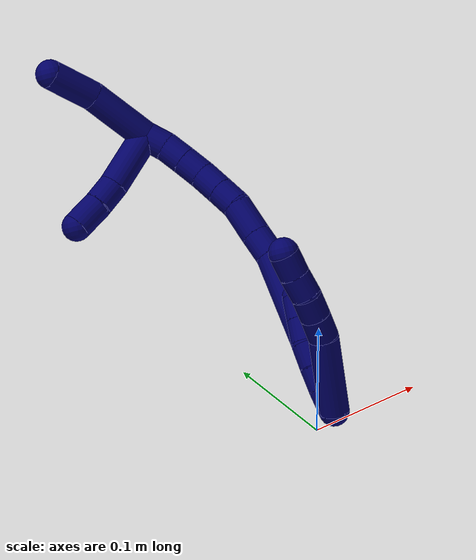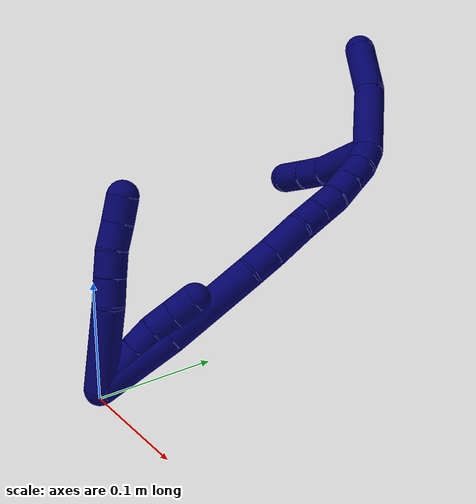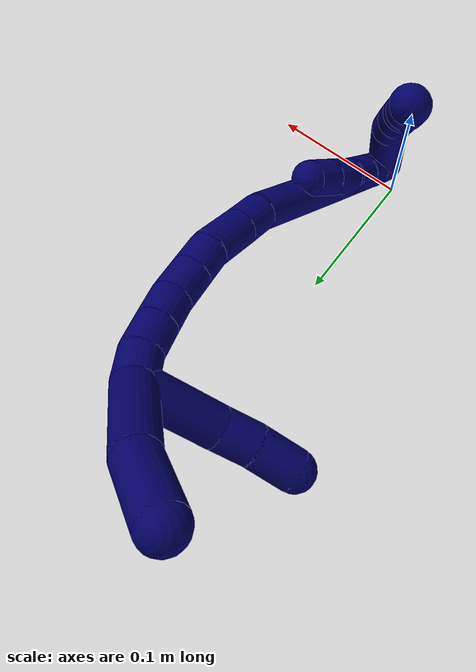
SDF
<sdf version="1.7">
 <world name="default">
  <model name="photoneo_s_sensor">
   <static>1</static>
   <pose>0 0 2 1.57079 1.57079 3.14159</pose>
   <link name="link">
    <inertial><mass>0.1</mass></inertial>
    <sensor name="sensor" type="depth">
     <update_rate>30</update_rate>
     <camera>
      <horizontal_fov>1.22</horizontal_fov>
      <image><width>1920</width><height>1200</height><format>B8G8R8</format></image>
      <clip><near>0.1</near><far>4</far></clip>
      <depth_camera><output>points</output></depth_camera>
     </camera>
     <plugin name="camera_plugin" filename="libgazebo_ros_depth_camera.so">
      <baseline>0.2</baseline>
      <alwaysOn>1</alwaysOn>
      <updateRate>0.0</updateRate>
      <cameraName>camera_ir</cameraName>
      <imageTopicName>/camera/color/image_raw</imageTopicName>
      <cameraInfoTopicName>/camera/color/camera_info</cameraInfoTopicName>
      <depthImageTopicName>/camera/depth/image_raw</depthImageTopicName>
      <depthImageCameraInfoTopicName>/camera/depth/camera_info</depthImageCameraInfoTopicName>
      <pointCloudTopicName>/camera/depth/points</pointCloudTopicName>
      <frameName>fr_optical</frameName>
      <pointCloudCutoff>0.1</pointCloudCutoff>
      <pointCloudCutoffMax>2.0</pointCloudCutoffMax>
      <distortionK1>0</distortionK1>
      <distortionK2>0</distortionK2>
      <distortionK3>0</distortionK3>
      <distortionT1>0</distortionT1>
      <distortionT2>0</distortionT2>
      <CxPrime>0</CxPrime>
      <Cx>0</Cx>
      <Cy>0</Cy>
      <focalLength>0</focalLength>
      <hackBaseline>0</hackBaseline>
     </plugin>
    </sensor>
   </link>
  </model>
  <model name="bin">
   <static>1</static>
   <link name="bottom">
    <collision name="collision-bottom">
     <pose>0 0 -0.01 0 -0 0</pose>
     <geometry><box><size>0.8 0.6 0.02</size></box></geometry>
     <surface>
      <friction><ode><mu>100</mu><mu2>100</mu2></ode></friction>
      <contact><collide_bitmask>65535</collide_bitmask></contact>
     </surface>
    </collision>
   </link>
   <link name="west_wall">
    <collision name="collision-west_wall">
     <pose>-0.41 0 0.1 0 -0 0</pose>
     <geometry><box><size>0.02 0.6 0.2</size></box></geometry>
     <surface>
      <friction><ode><mu>100</mu><mu2>100</mu2></ode></friction>
      <contact><collide_bitmask>65535</collide_bitmask></contact>
     </surface>
    </collision>
   </link>
   <link name="east_wall">
    <collision name="collision-east_wall">
     <pose>0.41 0 0.1 0 -0 0</pose>
     <geometry><box><size>0.02 0.6 0.2</size></box></geometry>
     <surface>
      <friction><ode><mu>100</mu><mu2>100</mu2></ode></friction>
      <contact><collide_bitmask>65535</collide_bitmask></contact>
     </surface>
    </collision>
   </link>
   <link name="south_wall">
    <collision name="collision-south_wall">
     <pose>0 -0.31 0.1 0 -0 0</pose>
     <geometry><box><size>0.8 0.02 0.2</size></box></geometry>
     <surface>
      <friction><ode><mu>100</mu><mu2>100</mu2></ode></friction>
      <contact><collide_bitmask>65535</collide_bitmask></contact>
     </surface>
    </collision>
   </link>
   <link name="north_wall">
    <collision name="collision-north_wall">
     <pose>0 0.31 0.1 0 -0 0</pose>
     <geometry><box><size>0.8 0.02 0.2</size></box></geometry>
     <surface>
      <friction><ode><mu>100</mu><mu2>100</mu2></ode></friction>
      <contact><collide_bitmask>65535</collide_bitmask></contact>
     </surface>
    </collision>
   </link>
  </model>
  <model name="7">
   <static>0</static>
   <link name="7">
    <collision name="collision-cylinder-e_1_2_8">
     <pose>-0.014497 -0.006418 0.030161 0.209649 -0.439474 -0.046987</pose>
     <geometry><cylinder><radius>0.0125</radius><length>0.068149</length></cylinder></geometry>
     <surface>
      <friction><ode><mu>1.16</mu><mu2>1.16</mu2><slip1>0</slip1><slip2>0</slip2></ode></friction>
      <contact><ode><kp>1e+06</kp><kd>1</kd><max_vel>0</max_vel><min_depth>0.001</min_depth></ode></contact>
     </surface>
    </collision>
    <visual name="visual-cylinder-e_1_2_8">
     <pose>-0.014497 -0.006418 0.030161 0.209649 -0.439474 -0.046987</pose>
     <geometry><cylinder><radius>0.0125</radius><length>0.068149</length></cylinder></geometry>
     <material><ambient>0.003922 0 0.403922 1</ambient></material>
    </visual>
    <collision name="collision-cylinder-e_2_8_9">
     <pose>-0.034378 -0.012819 0.069376 -0.001751 -0.536435 0.000481</pose>
     <geometry><cylinder><radius>0.0125</radius><length>0.021065</length></cylinder></geometry>
     <surface>
      <friction><ode><mu>1.16</mu><mu2>1.16</mu2><slip1>0</slip1><slip2>0</slip2></ode></friction>
      <contact><ode><kp>1e+06</kp><kd>1</kd><max_vel>0</max_vel><min_depth>0.001</min_depth></ode></contact>
     </surface>
    </collision>
    <visual name="visual-cylinder-e_2_8_9">
     <pose>-0.034378 -0.012819 0.069376 -0.001751 -0.536435 0.000481</pose>
     <geometry><cylinder><radius>0.0125</radius><length>0.021065</length></cylinder></geometry>
     <material><ambient>0.003922 0 0.403922 1</ambient></material>
    </visual>
    <collision name="collision-cylinder-e_3_9_10">
     <pose>-0.044802 -0.012441 0.087161 -0.041471 -0.523245 0.011106</pose>
     <geometry><cylinder><radius>0.0125</radius><length>0.020179</length></cylinder></geometry>
     <surface>
      <friction><ode><mu>1.16</mu><mu2>1.16</mu2><slip1>0</slip1><slip2>0</slip2></ode></friction>
      <contact><ode><kp>1e+06</kp><kd>1</kd><max_vel>0</max_vel><min_depth>0.001</min_depth></ode></contact>
     </surface>
    </collision>
    <visual name="visual-cylinder-e_3_9_10">
     <pose>-0.044802 -0.012441 0.087161 -0.041471 -0.523245 0.011106</pose>
     <geometry><cylinder><radius>0.0125</radius><length>0.020179</length></cylinder></geometry>
     <material><ambient>0.003922 0 0.403922 1</ambient></material>
    </visual>
    <collision name="collision-cylinder-e_4_10_11">
     <pose>-0.053679 -0.010368 0.105102 -0.183721 -0.388622 0.036253</pose>
     <geometry><cylinder><radius>0.0125</radius><length>0.020243</length></cylinder></geometry>
     <surface>
      <friction><ode><mu>1.16</mu><mu2>1.16</mu2><slip1>0</slip1><slip2>0</slip2></ode></friction>
      <contact><ode><kp>1e+06</kp><kd>1</kd><max_vel>0</max_vel><min_depth>0.001</min_depth></ode></contact>
     </surface>
    </collision>
    <visual name="visual-cylinder-e_4_10_11">
     <pose>-0.053679 -0.010368 0.105102 -0.183721 -0.388622 0.036253</pose>
     <geometry><cylinder><radius>0.0125</radius><length>0.020243</length></cylinder></geometry>
     <material><ambient>0.003922 0 0.403922 1</ambient></material>
    </visual>
    <collision name="collision-cylinder-e_5_11_6">
     <pose>-0.0616 -0.007627 0.12358 -0.11055 -0.41291 0.023176</pose>
     <geometry><cylinder><radius>0.0125</radius><length>0.020364</length></cylinder></geometry>
     <surface>
      <friction><ode><mu>1.16</mu><mu2>1.16</mu2><slip1>0</slip1><slip2>0</slip2></ode></friction>
      <contact><ode><kp>1e+06</kp><kd>1</kd><max_vel>0</max_vel><min_depth>0.001</min_depth></ode></contact>
     </surface>
    </collision>
    <visual name="visual-cylinder-e_5_11_6">
     <pose>-0.0616 -0.007627 0.12358 -0.11055 -0.41291 0.023176</pose>
     <geometry><cylinder><radius>0.0125</radius><length>0.020364</length></cylinder></geometry>
     <material><ambient>0.003922 0 0.403922 1</ambient></material>
    </visual>
    <collision name="collision-cylinder-e_1_2_12">
     <pose>0.001482 0.002124 0.009659 -0.216442 0.148742 -0.01619</pose>
     <geometry><cylinder><radius>0.0125</radius><length>0.02</length></cylinder></geometry>
     <surface>
      <friction><ode><mu>1.16</mu><mu2>1.16</mu2><slip1>0</slip1><slip2>0</slip2></ode></friction>
      <contact><ode><kp>1e+06</kp><kd>1</kd><max_vel>0</max_vel><min_depth>0.001</min_depth></ode></contact>
     </surface>
    </collision>
    <visual name="visual-cylinder-e_1_2_12">
     <pose>0.001482 0.002124 0.009659 -0.216442 0.148742 -0.01619</pose>
     <geometry><cylinder><radius>0.0125</radius><length>0.02</length></cylinder></geometry>
     <material><ambient>0.003922 0 0.403922 1</ambient></material>
    </visual>
    <collision name="collision-cylinder-e_2_12_13">
     <pose>0.003866 0.005839 0.029149 -0.160433 0.090328 -0.007266</pose>
     <geometry><cylinder><radius>0.0125</radius><length>0.02</length></cylinder></geometry>
     <surface>
      <friction><ode><mu>1.16</mu><mu2>1.16</mu2><slip1>0</slip1><slip2>0</slip2></ode></friction>
      <contact><ode><kp>1e+06</kp><kd>1</kd><max_vel>0</max_vel><min_depth>0.001</min_depth></ode></contact>
     </surface>
    </collision>
    <visual name="visual-cylinder-e_2_12_13">
     <pose>0.003866 0.005839 0.029149 -0.160433 0.090328 -0.007266</pose>
     <geometry><cylinder><radius>0.0125</radius><length>0.02</length></cylinder></geometry>
     <material><ambient>0.003922 0 0.403922 1</ambient></material>
    </visual>
    <collision name="collision-cylinder-e_3_13_14">
     <pose>0.006331 0.008876 0.048751 -0.146927 0.156994 -0.011578</pose>
     <geometry><cylinder><radius>0.0125</radius><length>0.02</length></cylinder></geometry>
     <surface>
      <friction><ode><mu>1.16</mu><mu2>1.16</mu2><slip1>0</slip1><slip2>0</slip2></ode></friction>
      <contact><ode><kp>1e+06</kp><kd>1</kd><max_vel>0</max_vel><min_depth>0.001</min_depth></ode></contact>
     </surface>
    </collision>
    <visual name="visual-cylinder-e_3_13_14">
     <pose>0.006331 0.008876 0.048751 -0.146927 0.156994 -0.011578</pose>
     <geometry><cylinder><radius>0.0125</radius><length>0.02</length></cylinder></geometry>
     <material><ambient>0.003922 0 0.403922 1</ambient></material>
    </visual>
    <collision name="collision-cylinder-e_4_14_15">
     <pose>0.011089 0.010593 0.067994 -0.028686 0.325047 -0.004704</pose>
     <geometry><cylinder><radius>0.0125</radius><length>0.02</length></cylinder></geometry>
     <surface>
      <friction><ode><mu>1.16</mu><mu2>1.16</mu2><slip1>0</slip1><slip2>0</slip2></ode></friction>
      <contact><ode><kp>1e+06</kp><kd>1</kd><max_vel>0</max_vel><min_depth>0.001</min_depth></ode></contact>
     </surface>
    </collision>
    <visual name="visual-cylinder-e_4_14_15">
     <pose>0.011089 0.010593 0.067994 -0.028686 0.325047 -0.004704</pose>
     <geometry><cylinder><radius>0.0125</radius><length>0.02</length></cylinder></geometry>
     <material><ambient>0.003922 0 0.403922 1</ambient></material>
    </visual>
    <collision name="collision-cylinder-e_5_15_5">
     <pose>0.017453 0.011108 0.086947 -0.025567 0.322688 -0.004161</pose>
     <geometry><cylinder><radius>0.0125</radius><length>0.02</length></cylinder></geometry>
     <surface>
      <friction><ode><mu>1.16</mu><mu2>1.16</mu2><slip1>0</slip1><slip2>0</slip2></ode></friction>
      <contact><ode><kp>1e+06</kp><kd>1</kd><max_vel>0</max_vel><min_depth>0.001</min_depth></ode></contact>
     </surface>
    </collision>
    <visual name="visual-cylinder-e_5_15_5">
     <pose>0.017453 0.011108 0.086947 -0.025567 0.322688 -0.004161</pose>
     <geometry><cylinder><radius>0.0125</radius><length>0.02</length></cylinder></geometry>
     <material><ambient>0.003922 0 0.403922 1</ambient></material>
    </visual>
    <collision name="collision-cylinder-e_1_2_16">
     <pose>0.010947 0.006892 0.030286 -0.223761 0.338853 -0.038434</pose>
     <geometry><cylinder><radius>0.0125</radius><length>0.065867</length></cylinder></geometry>
     <surface>
      <friction><ode><mu>1.16</mu><mu2>1.16</mu2><slip1>0</slip1><slip2>0</slip2></ode></friction>
      <contact><ode><kp>1e+06</kp><kd>1</kd><max_vel>0</max_vel><min_depth>0.001</min_depth></ode></contact>
     </surface>
    </collision>
    <visual name="visual-cylinder-e_1_2_16">
     <pose>0.010947 0.006892 0.030286 -0.223761 0.338853 -0.038434</pose>
     <geometry><cylinder><radius>0.0125</radius><length>0.065867</length></cylinder></geometry>
     <material><ambient>0.003922 0 0.403922 1</ambient></material>
    </visual>
    <collision name="collision-cylinder-e_2_16_17">
     <pose>0.032543 0.021609 0.097702 -0.207698 0.273583 -0.028691</pose>
     <geometry><cylinder><radius>0.0125</radius><length>0.078821</length></cylinder></geometry>
     <surface>
      <friction><ode><mu>1.16</mu><mu2>1.16</mu2><slip1>0</slip1><slip2>0</slip2></ode></friction>
      <contact><ode><kp>1e+06</kp><kd>1</kd><max_vel>0</max_vel><min_depth>0.001</min_depth></ode></contact>
     </surface>
    </collision>
    <visual name="visual-cylinder-e_2_16_17">
     <pose>0.032543 0.021609 0.097702 -0.207698 0.273583 -0.028691</pose>
     <geometry><cylinder><radius>0.0125</radius><length>0.078821</length></cylinder></geometry>
     <material><ambient>0.003922 0 0.403922 1</ambient></material>
    </visual>
    <collision name="collision-cylinder-e_3_17_18">
     <pose>0.045984 0.033843 0.144602 -0.423919 0.254931 -0.055144</pose>
     <geometry><cylinder><radius>0.0125</radius><length>0.022154</length></cylinder></geometry>
     <surface>
      <friction><ode><mu>1.16</mu><mu2>1.16</mu2><slip1>0</slip1><slip2>0</slip2></ode></friction>
      <contact><ode><kp>1e+06</kp><kd>1</kd><max_vel>0</max_vel><min_depth>0.001</min_depth></ode></contact>
     </surface>
    </collision>
    <visual name="visual-cylinder-e_3_17_18">
     <pose>0.045984 0.033843 0.144602 -0.423919 0.254931 -0.055144</pose>
     <geometry><cylinder><radius>0.0125</radius><length>0.022154</length></cylinder></geometry>
     <material><ambient>0.003922 0 0.403922 1</ambient></material>
    </visual>
    <collision name="collision-cylinder-e_4_18_19">
     <pose>0.052148 0.044099 0.168477 -0.392963 0.217276 -0.043413</pose>
     <geometry><cylinder><radius>0.0125</radius><length>0.031272</length></cylinder></geometry>
     <surface>
      <friction><ode><mu>1.16</mu><mu2>1.16</mu2><slip1>0</slip1><slip2>0</slip2></ode></friction>
      <contact><ode><kp>1e+06</kp><kd>1</kd><max_vel>0</max_vel><min_depth>0.001</min_depth></ode></contact>
     </surface>
    </collision>
    <visual name="visual-cylinder-e_4_18_19">
     <pose>0.052148 0.044099 0.168477 -0.392963 0.217276 -0.043413</pose>
     <geometry><cylinder><radius>0.0125</radius><length>0.031272</length></cylinder></geometry>
     <material><ambient>0.003922 0 0.403922 1</ambient></material>
    </visual>
    <collision name="collision-cylinder-e_5_19_20">
     <pose>0.057829 0.055785 0.190364 -0.643748 0.233106 -0.078048</pose>
     <geometry><cylinder><radius>0.0125</radius><length>0.020001</length></cylinder></geometry>
     <surface>
      <friction><ode><mu>1.16</mu><mu2>1.16</mu2><slip1>0</slip1><slip2>0</slip2></ode></friction>
      <contact><ode><kp>1e+06</kp><kd>1</kd><max_vel>0</max_vel><min_depth>0.001</min_depth></ode></contact>
     </surface>
    </collision>
    <visual name="visual-cylinder-e_5_19_20">
     <pose>0.057829 0.055785 0.190364 -0.643748 0.233106 -0.078048</pose>
     <geometry><cylinder><radius>0.0125</radius><length>0.020001</length></cylinder></geometry>
     <material><ambient>0.003922 0 0.403922 1</ambient></material>
    </visual>
    <collision name="collision-cylinder-e_6_20_21">
     <pose>0.062687 0.067967 0.206466 -0.651314 0.238936 -0.081025</pose>
     <geometry><cylinder><radius>0.0125</radius><length>0.021534</length></cylinder></geometry>
     <surface>
      <friction><ode><mu>1.16</mu><mu2>1.16</mu2><slip1>0</slip1><slip2>0</slip2></ode></friction>
      <contact><ode><kp>1e+06</kp><kd>1</kd><max_vel>0</max_vel><min_depth>0.001</min_depth></ode></contact>
     </surface>
    </collision>
    <visual name="visual-cylinder-e_6_20_21">
     <pose>0.062687 0.067967 0.206466 -0.651314 0.238936 -0.081025</pose>
     <geometry><cylinder><radius>0.0125</radius><length>0.021534</length></cylinder></geometry>
     <material><ambient>0.003922 0 0.403922 1</ambient></material>
    </visual>
    <collision name="collision-cylinder-e_7_21_22">
     <pose>0.066063 0.080611 0.22259 -0.679287 0.082275 -0.029085</pose>
     <geometry><cylinder><radius>0.0125</radius><length>0.02013</length></cylinder></geometry>
     <surface>
      <friction><ode><mu>1.16</mu><mu2>1.16</mu2><slip1>0</slip1><slip2>0</slip2></ode></friction>
      <contact><ode><kp>1e+06</kp><kd>1</kd><max_vel>0</max_vel><min_depth>0.001</min_depth></ode></contact>
     </surface>
    </collision>
    <visual name="visual-cylinder-e_7_21_22">
     <pose>0.066063 0.080611 0.22259 -0.679287 0.082275 -0.029085</pose>
     <geometry><cylinder><radius>0.0125</radius><length>0.02013</length></cylinder></geometry>
     <material><ambient>0.003922 0 0.403922 1</ambient></material>
    </visual>
    <collision name="collision-cylinder-e_8_22_23">
     <pose>0.067828 0.093346 0.238062 -0.698104 0.093503 -0.034052</pose>
     <geometry><cylinder><radius>0.0125</radius><length>0.020105</length></cylinder></geometry>
     <surface>
      <friction><ode><mu>1.16</mu><mu2>1.16</mu2><slip1>0</slip1><slip2>0</slip2></ode></friction>
      <contact><ode><kp>1e+06</kp><kd>1</kd><max_vel>0</max_vel><min_depth>0.001</min_depth></ode></contact>
     </surface>
    </collision>
    <visual name="visual-cylinder-e_8_22_23">
     <pose>0.067828 0.093346 0.238062 -0.698104 0.093503 -0.034052</pose>
     <geometry><cylinder><radius>0.0125</radius><length>0.020105</length></cylinder></geometry>
     <material><ambient>0.003922 0 0.403922 1</ambient></material>
    </visual>
    <collision name="collision-cylinder-e_9_23_1">
     <pose>0.067658 0.107168 0.252462 -0.831786 -0.110521 0.048852</pose>
     <geometry><cylinder><radius>0.0125</radius><length>0.020115</length></cylinder></geometry>
     <surface>
      <friction><ode><mu>1.16</mu><mu2>1.16</mu2><slip1>0</slip1><slip2>0</slip2></ode></friction>
      <contact><ode><kp>1e+06</kp><kd>1</kd><max_vel>0</max_vel><min_depth>0.001</min_depth></ode></contact>
     </surface>
    </collision>
    <visual name="visual-cylinder-e_9_23_1">
     <pose>0.067658 0.107168 0.252462 -0.831786 -0.110521 0.048852</pose>
     <geometry><cylinder><radius>0.0125</radius><length>0.020115</length></cylinder></geometry>
     <material><ambient>0.003922 0 0.403922 1</ambient></material>
    </visual>
    <collision name="collision-cylinder-e_1_1_24">
     <pose>0.056448 0.130457 0.241802 -2.40101 -0.404928 0.972826</pose>
     <geometry><cylinder><radius>0.0125</radius><length>0.051278</length></cylinder></geometry>
     <surface>
      <friction><ode><mu>1.16</mu><mu2>1.16</mu2><slip1>0</slip1><slip2>0</slip2></ode></friction>
      <contact><ode><kp>1e+06</kp><kd>1</kd><max_vel>0</max_vel><min_depth>0.001</min_depth></ode></contact>
     </surface>
    </collision>
    <visual name="visual-cylinder-e_1_1_24">
     <pose>0.056448 0.130457 0.241802 -2.40101 -0.404928 0.972826</pose>
     <geometry><cylinder><radius>0.0125</radius><length>0.051278</length></cylinder></geometry>
     <material><ambient>0.003922 0 0.403922 1</ambient></material>
    </visual>
    <collision name="collision-cylinder-e_2_24_25">
     <pose>0.040352 0.15334 0.218018 -2.31198 -0.564586 1.16486</pose>
     <geometry><cylinder><radius>0.0125</radius><length>0.022411</length></cylinder></geometry>
     <surface>
      <friction><ode><mu>1.16</mu><mu2>1.16</mu2><slip1>0</slip1><slip2>0</slip2></ode></friction>
      <contact><ode><kp>1e+06</kp><kd>1</kd><max_vel>0</max_vel><min_depth>0.001</min_depth></ode></contact>
     </surface>
    </collision>
    <visual name="visual-cylinder-e_2_24_25">
     <pose>0.040352 0.15334 0.218018 -2.31198 -0.564586 1.16486</pose>
     <geometry><cylinder><radius>0.0125</radius><length>0.022411</length></cylinder></geometry>
     <material><ambient>0.003922 0 0.403922 1</ambient></material>
    </visual>
    <collision name="collision-cylinder-e_3_25_4">
     <pose>0.027714 0.169432 0.204846 -2.21067 -0.529234 0.989484</pose>
     <geometry><cylinder><radius>0.0125</radius><length>0.026312</length></cylinder></geometry>
     <surface>
      <friction><ode><mu>1.16</mu><mu2>1.16</mu2><slip1>0</slip1><slip2>0</slip2></ode></friction>
      <contact><ode><kp>1e+06</kp><kd>1</kd><max_vel>0</max_vel><min_depth>0.001</min_depth></ode></contact>
     </surface>
    </collision>
    <visual name="visual-cylinder-e_3_25_4">
     <pose>0.027714 0.169432 0.204846 -2.21067 -0.529234 0.989484</pose>
     <geometry><cylinder><radius>0.0125</radius><length>0.026312</length></cylinder></geometry>
     <material><ambient>0.003922 0 0.403922 1</ambient></material>
    </visual>
    <collision name="collision-cylinder-e_1_1_26">
     <pose>0.053018 0.128818 0.280065 -0.599463 -0.491478 0.154711</pose>
     <geometry><cylinder><radius>0.0125</radius><length>0.057342</length></cylinder></geometry>
     <surface>
      <friction><ode><mu>1.16</mu><mu2>1.16</mu2><slip1>0</slip1><slip2>0</slip2></ode></friction>
      <contact><ode><kp>1e+06</kp><kd>1</kd><max_vel>0</max_vel><min_depth>0.001</min_depth></ode></contact>
     </surface>
    </collision>
    <visual name="visual-cylinder-e_1_1_26">
     <pose>0.053018 0.128818 0.280065 -0.599463 -0.491478 0.154711</pose>
     <geometry><cylinder><radius>0.0125</radius><length>0.057342</length></cylinder></geometry>
     <material><ambient>0.003922 0 0.403922 1</ambient></material>
    </visual>
    <collision name="collision-cylinder-e_2_26_3">
     <pose>0.026288 0.154656 0.313047 -0.762828 -0.667252 0.276225</pose>
     <geometry><cylinder><radius>0.0125</radius><length>0.042658</length></cylinder></geometry>
     <surface>
      <friction><ode><mu>1.16</mu><mu2>1.16</mu2><slip1>0</slip1><slip2>0</slip2></ode></friction>
      <contact><ode><kp>1e+06</kp><kd>1</kd><max_vel>0</max_vel><min_depth>0.001</min_depth></ode></contact>
     </surface>
    </collision>
    <visual name="visual-cylinder-e_2_26_3">
     <pose>0.026288 0.154656 0.313047 -0.762828 -0.667252 0.276225</pose>
     <geometry><cylinder><radius>0.0125</radius><length>0.042658</length></cylinder></geometry>
     <material><ambient>0.003922 0 0.403922 1</ambient></material>
    </visual>
    <collision name="collision-sphere-3">
     <pose>0.013089 0.166233 0.325158 0 -0 0</pose>
     <geometry><sphere><radius>0.0125</radius></sphere></geometry>
     <surface>
      <friction><ode><mu>1.16</mu><mu2>1.16</mu2><slip1>0</slip1><slip2>0</slip2></ode></friction>
      <contact><ode><kp>1e+06</kp><kd>1</kd><max_vel>0</max_vel><min_depth>0.001</min_depth></ode></contact>
     </surface>
    </collision>
    <visual name="visual-sphere-3">
     <pose>0.013089 0.166233 0.325158 0 -0 0</pose>
     <geometry><sphere><radius>0.0125</radius></sphere></geometry>
     <material><ambient>0.003922 0 0.403922 1</ambient></material>
    </visual>
    <collision name="collision-sphere-26">
     <pose>0.039487 0.14308 0.300935 0 -0 0</pose>
     <geometry><sphere><radius>0.0125</radius></sphere></geometry>
     <surface>
      <friction><ode><mu>1.16</mu><mu2>1.16</mu2><slip1>0</slip1><slip2>0</slip2></ode></friction>
      <contact><ode><kp>1e+06</kp><kd>1</kd><max_vel>0</max_vel><min_depth>0.001</min_depth></ode></contact>
     </surface>
    </collision>
    <visual name="visual-sphere-26">
     <pose>0.039487 0.14308 0.300935 0 -0 0</pose>
     <geometry><sphere><radius>0.0125</radius></sphere></geometry>
     <material><ambient>0.003922 0 0.403922 1</ambient></material>
    </visual>
    <collision name="collision-sphere-4">
     <pose>0.021072 0.178542 0.198065 0 -0 0</pose>
     <geometry><sphere><radius>0.0125</radius></sphere></geometry>
     <surface>
      <friction><ode><mu>1.16</mu><mu2>1.16</mu2><slip1>0</slip1><slip2>0</slip2></ode></friction>
      <contact><ode><kp>1e+06</kp><kd>1</kd><max_vel>0</max_vel><min_depth>0.001</min_depth></ode></contact>
     </surface>
    </collision>
    <visual name="visual-sphere-4">
     <pose>0.021072 0.178542 0.198065 0 -0 0</pose>
     <geometry><sphere><radius>0.0125</radius></sphere></geometry>
     <material><ambient>0.003922 0 0.403922 1</ambient></material>
    </visual>
    <collision name="collision-sphere-25">
     <pose>0.034356 0.160323 0.211626 0 -0 0</pose>
     <geometry><sphere><radius>0.0125</radius></sphere></geometry>
     <surface>
      <friction><ode><mu>1.16</mu><mu2>1.16</mu2><slip1>0</slip1><slip2>0</slip2></ode></friction>
      <contact><ode><kp>1e+06</kp><kd>1</kd><max_vel>0</max_vel><min_depth>0.001</min_depth></ode></contact>
     </surface>
    </collision>
    <visual name="visual-sphere-25">
     <pose>0.034356 0.160323 0.211626 0 -0 0</pose>
     <geometry><sphere><radius>0.0125</radius></sphere></geometry>
     <material><ambient>0.003922 0 0.403922 1</ambient></material>
    </visual>
    <collision name="collision-sphere-24">
     <pose>0.046347 0.146357 0.224409 0 -0 0</pose>
     <geometry><sphere><radius>0.0125</radius></sphere></geometry>
     <surface>
      <friction><ode><mu>1.16</mu><mu2>1.16</mu2><slip1>0</slip1><slip2>0</slip2></ode></friction>
      <contact><ode><kp>1e+06</kp><kd>1</kd><max_vel>0</max_vel><min_depth>0.001</min_depth></ode></contact>
     </surface>
    </collision>
    <visual name="visual-sphere-24">
     <pose>0.046347 0.146357 0.224409 0 -0 0</pose>
     <geometry><sphere><radius>0.0125</radius></sphere></geometry>
     <material><ambient>0.003922 0 0.403922 1</ambient></material>
    </visual>
    <collision name="collision-sphere-1">
     <pose>0.066548 0.114556 0.259195 0 -0 0</pose>
     <geometry><sphere><radius>0.0125</radius></sphere></geometry>
     <surface>
      <friction><ode><mu>1.16</mu><mu2>1.16</mu2><slip1>0</slip1><slip2>0</slip2></ode></friction>
      <contact><ode><kp>1e+06</kp><kd>1</kd><max_vel>0</max_vel><min_depth>0.001</min_depth></ode></contact>
     </surface>
    </collision>
    <visual name="visual-sphere-1">
     <pose>0.066548 0.114556 0.259195 0 -0 0</pose>
     <geometry><sphere><radius>0.0125</radius></sphere></geometry>
     <material><ambient>0.003922 0 0.403922 1</ambient></material>
    </visual>
    <collision name="collision-sphere-23">
     <pose>0.068767 0.099779 0.245729 0 -0 0</pose>
     <geometry><sphere><radius>0.0125</radius></sphere></geometry>
     <surface>
      <friction><ode><mu>1.16</mu><mu2>1.16</mu2><slip1>0</slip1><slip2>0</slip2></ode></friction>
      <contact><ode><kp>1e+06</kp><kd>1</kd><max_vel>0</max_vel><min_depth>0.001</min_depth></ode></contact>
     </surface>
    </collision>
    <visual name="visual-sphere-23">
     <pose>0.068767 0.099779 0.245729 0 -0 0</pose>
     <geometry><sphere><radius>0.0125</radius></sphere></geometry>
     <material><ambient>0.003922 0 0.403922 1</ambient></material>
    </visual>
    <collision name="collision-sphere-22">
     <pose>0.06689 0.086913 0.230394 0 -0 0</pose>
     <geometry><sphere><radius>0.0125</radius></sphere></geometry>
     <surface>
      <friction><ode><mu>1.16</mu><mu2>1.16</mu2><slip1>0</slip1><slip2>0</slip2></ode></friction>
      <contact><ode><kp>1e+06</kp><kd>1</kd><max_vel>0</max_vel><min_depth>0.001</min_depth></ode></contact>
     </surface>
    </collision>
    <visual name="visual-sphere-22">
     <pose>0.06689 0.086913 0.230394 0 -0 0</pose>
     <geometry><sphere><radius>0.0125</radius></sphere></geometry>
     <material><ambient>0.003922 0 0.403922 1</ambient></material>
    </visual>
    <collision name="collision-sphere-21">
     <pose>0.065235 0.074309 0.214786 0 -0 0</pose>
     <geometry><sphere><radius>0.0125</radius></sphere></geometry>
     <surface>
      <friction><ode><mu>1.16</mu><mu2>1.16</mu2><slip1>0</slip1><slip2>0</slip2></ode></friction>
      <contact><ode><kp>1e+06</kp><kd>1</kd><max_vel>0</max_vel><min_depth>0.001</min_depth></ode></contact>
     </surface>
    </collision>
    <visual name="visual-sphere-21">
     <pose>0.065235 0.074309 0.214786 0 -0 0</pose>
     <geometry><sphere><radius>0.0125</radius></sphere></geometry>
     <material><ambient>0.003922 0 0.403922 1</ambient></material>
    </visual>
    <collision name="collision-sphere-6">
     <pose>-0.065686 -0.006599 0.13285 0 -0 0</pose>
     <geometry><sphere><radius>0.0125</radius></sphere></geometry>
     <surface>
      <friction><ode><mu>1.16</mu><mu2>1.16</mu2><slip1>0</slip1><slip2>0</slip2></ode></friction>
      <contact><ode><kp>1e+06</kp><kd>1</kd><max_vel>0</max_vel><min_depth>0.001</min_depth></ode></contact>
     </surface>
    </collision>
    <visual name="visual-sphere-6">
     <pose>-0.065686 -0.006599 0.13285 0 -0 0</pose>
     <geometry><sphere><radius>0.0125</radius></sphere></geometry>
     <material><ambient>0.003922 0 0.403922 1</ambient></material>
    </visual>
    <collision name="collision-sphere-11">
     <pose>-0.057514 -0.008656 0.114311 0 -0 0</pose>
     <geometry><sphere><radius>0.0125</radius></sphere></geometry>
     <surface>
      <friction><ode><mu>1.16</mu><mu2>1.16</mu2><slip1>0</slip1><slip2>0</slip2></ode></friction>
      <contact><ode><kp>1e+06</kp><kd>1</kd><max_vel>0</max_vel><min_depth>0.001</min_depth></ode></contact>
     </surface>
    </collision>
    <visual name="visual-sphere-11">
     <pose>-0.057514 -0.008656 0.114311 0 -0 0</pose>
     <geometry><sphere><radius>0.0125</radius></sphere></geometry>
     <material><ambient>0.003922 0 0.403922 1</ambient></material>
    </visual>
    <collision name="collision-sphere-10">
     <pose>-0.049844 -0.012079 0.095893 0 -0 0</pose>
     <geometry><sphere><radius>0.0125</radius></sphere></geometry>
     <surface>
      <friction><ode><mu>1.16</mu><mu2>1.16</mu2><slip1>0</slip1><slip2>0</slip2></ode></friction>
      <contact><ode><kp>1e+06</kp><kd>1</kd><max_vel>0</max_vel><min_depth>0.001</min_depth></ode></contact>
     </surface>
    </collision>
    <visual name="visual-sphere-10">
     <pose>-0.049844 -0.012079 0.095893 0 -0 0</pose>
     <geometry><sphere><radius>0.0125</radius></sphere></geometry>
     <material><ambient>0.003922 0 0.403922 1</ambient></material>
    </visual>
    <collision name="collision-sphere-9">
     <pose>-0.039761 -0.012803 0.078429 0 -0 0</pose>
     <geometry><sphere><radius>0.0125</radius></sphere></geometry>
     <surface>
      <friction><ode><mu>1.16</mu><mu2>1.16</mu2><slip1>0</slip1><slip2>0</slip2></ode></friction>
      <contact><ode><kp>1e+06</kp><kd>1</kd><max_vel>0</max_vel><min_depth>0.001</min_depth></ode></contact>
     </surface>
    </collision>
    <visual name="visual-sphere-9">
     <pose>-0.039761 -0.012803 0.078429 0 -0 0</pose>
     <geometry><sphere><radius>0.0125</radius></sphere></geometry>
     <material><ambient>0.003922 0 0.403922 1</ambient></material>
    </visual>
    <collision name="collision-sphere-2">
     <geometry><sphere><radius>0.0125</radius></sphere></geometry>
     <surface>
      <friction><ode><mu>1.16</mu><mu2>1.16</mu2><slip1>0</slip1><slip2>0</slip2></ode></friction>
      <contact><ode><kp>1e+06</kp><kd>1</kd><max_vel>0</max_vel><min_depth>0.001</min_depth></ode></contact>
     </surface>
    </collision>
    <visual name="visual-sphere-2">
     <geometry><sphere><radius>0.0125</radius></sphere></geometry>
     <material><ambient>0.003922 0 0.403922 1</ambient></material>
    </visual>
    <collision name="collision-sphere-19">
     <pose>0.055519 0.049945 0.182581 0 -0 0</pose>
     <geometry><sphere><radius>0.0125</radius></sphere></geometry>
     <surface>
      <friction><ode><mu>1.16</mu><mu2>1.16</mu2><slip1>0</slip1><slip2>0</slip2></ode></friction>
      <contact><ode><kp>1e+06</kp><kd>1</kd><max_vel>0</max_vel><min_depth>0.001</min_depth></ode></contact>
     </surface>
    </collision>
    <visual name="visual-sphere-19">
     <pose>0.055519 0.049945 0.182581 0 -0 0</pose>
     <geometry><sphere><radius>0.0125</radius></sphere></geometry>
     <material><ambient>0.003922 0 0.403922 1</ambient></material>
    </visual>
    <collision name="collision-sphere-8">
     <pose>-0.028995 -0.012835 0.060323 0 -0 0</pose>
     <geometry><sphere><radius>0.0125</radius></sphere></geometry>
     <surface>
      <friction><ode><mu>1.16</mu><mu2>1.16</mu2><slip1>0</slip1><slip2>0</slip2></ode></friction>
      <contact><ode><kp>1e+06</kp><kd>1</kd><max_vel>0</max_vel><min_depth>0.001</min_depth></ode></contact>
     </surface>
    </collision>
    <visual name="visual-sphere-8">
     <pose>-0.028995 -0.012835 0.060323 0 -0 0</pose>
     <geometry><sphere><radius>0.0125</radius></sphere></geometry>
     <material><ambient>0.003922 0 0.403922 1</ambient></material>
    </visual>
    <collision name="collision-sphere-12">
     <pose>0.002964 0.004248 0.019318 0 -0 0</pose>
     <geometry><sphere><radius>0.0125</radius></sphere></geometry>
     <surface>
      <friction><ode><mu>1.16</mu><mu2>1.16</mu2><slip1>0</slip1><slip2>0</slip2></ode></friction>
      <contact><ode><kp>1e+06</kp><kd>1</kd><max_vel>0</max_vel><min_depth>0.001</min_depth></ode></contact>
     </surface>
    </collision>
    <visual name="visual-sphere-12">
     <pose>0.002964 0.004248 0.019318 0 -0 0</pose>
     <geometry><sphere><radius>0.0125</radius></sphere></geometry>
     <material><ambient>0.003922 0 0.403922 1</ambient></material>
    </visual>
    <collision name="collision-sphere-13">
     <pose>0.004768 0.00743 0.03898 0 -0 0</pose>
     <geometry><sphere><radius>0.0125</radius></sphere></geometry>
     <surface>
      <friction><ode><mu>1.16</mu><mu2>1.16</mu2><slip1>0</slip1><slip2>0</slip2></ode></friction>
      <contact><ode><kp>1e+06</kp><kd>1</kd><max_vel>0</max_vel><min_depth>0.001</min_depth></ode></contact>
     </surface>
    </collision>
    <visual name="visual-sphere-13">
     <pose>0.004768 0.00743 0.03898 0 -0 0</pose>
     <geometry><sphere><radius>0.0125</radius></sphere></geometry>
     <material><ambient>0.003922 0 0.403922 1</ambient></material>
    </visual>
    <collision name="collision-sphere-14">
     <pose>0.007895 0.010322 0.058522 0 -0 0</pose>
     <geometry><sphere><radius>0.0125</radius></sphere></geometry>
     <surface>
      <friction><ode><mu>1.16</mu><mu2>1.16</mu2><slip1>0</slip1><slip2>0</slip2></ode></friction>
      <contact><ode><kp>1e+06</kp><kd>1</kd><max_vel>0</max_vel><min_depth>0.001</min_depth></ode></contact>
     </surface>
    </collision>
    <visual name="visual-sphere-14">
     <pose>0.007895 0.010322 0.058522 0 -0 0</pose>
     <geometry><sphere><radius>0.0125</radius></sphere></geometry>
     <material><ambient>0.003922 0 0.403922 1</ambient></material>
    </visual>
    <collision name="collision-sphere-15">
     <pose>0.014282 0.010865 0.077466 0 -0 0</pose>
     <geometry><sphere><radius>0.0125</radius></sphere></geometry>
     <surface>
      <friction><ode><mu>1.16</mu><mu2>1.16</mu2><slip1>0</slip1><slip2>0</slip2></ode></friction>
      <contact><ode><kp>1e+06</kp><kd>1</kd><max_vel>0</max_vel><min_depth>0.001</min_depth></ode></contact>
     </surface>
    </collision>
    <visual name="visual-sphere-15">
     <pose>0.014282 0.010865 0.077466 0 -0 0</pose>
     <geometry><sphere><radius>0.0125</radius></sphere></geometry>
     <material><ambient>0.003922 0 0.403922 1</ambient></material>
    </visual>
    <collision name="collision-sphere-5">
     <pose>0.020624 0.01135 0.096428 0 -0 0</pose>
     <geometry><sphere><radius>0.0125</radius></sphere></geometry>
     <surface>
      <friction><ode><mu>1.16</mu><mu2>1.16</mu2><slip1>0</slip1><slip2>0</slip2></ode></friction>
      <contact><ode><kp>1e+06</kp><kd>1</kd><max_vel>0</max_vel><min_depth>0.001</min_depth></ode></contact>
     </surface>
    </collision>
    <visual name="visual-sphere-5">
     <pose>0.020624 0.01135 0.096428 0 -0 0</pose>
     <geometry><sphere><radius>0.0125</radius></sphere></geometry>
     <material><ambient>0.003922 0 0.403922 1</ambient></material>
    </visual>
    <collision name="collision-sphere-16">
     <pose>0.021895 0.013785 0.060573 0 -0 0</pose>
     <geometry><sphere><radius>0.0125</radius></sphere></geometry>
     <surface>
      <friction><ode><mu>1.16</mu><mu2>1.16</mu2><slip1>0</slip1><slip2>0</slip2></ode></friction>
      <contact><ode><kp>1e+06</kp><kd>1</kd><max_vel>0</max_vel><min_depth>0.001</min_depth></ode></contact>
     </surface>
    </collision>
    <visual name="visual-sphere-16">
     <pose>0.021895 0.013785 0.060573 0 -0 0</pose>
     <geometry><sphere><radius>0.0125</radius></sphere></geometry>
     <material><ambient>0.003922 0 0.403922 1</ambient></material>
    </visual>
    <collision name="collision-sphere-17">
     <pose>0.043191 0.029434 0.134832 0 -0 0</pose>
     <geometry><sphere><radius>0.0125</radius></sphere></geometry>
     <surface>
      <friction><ode><mu>1.16</mu><mu2>1.16</mu2><slip1>0</slip1><slip2>0</slip2></ode></friction>
      <contact><ode><kp>1e+06</kp><kd>1</kd><max_vel>0</max_vel><min_depth>0.001</min_depth></ode></contact>
     </surface>
    </collision>
    <visual name="visual-sphere-17">
     <pose>0.043191 0.029434 0.134832 0 -0 0</pose>
     <geometry><sphere><radius>0.0125</radius></sphere></geometry>
     <material><ambient>0.003922 0 0.403922 1</ambient></material>
    </visual>
    <collision name="collision-sphere-18">
     <pose>0.048778 0.038252 0.154372 0 -0 0</pose>
     <geometry><sphere><radius>0.0125</radius></sphere></geometry>
     <surface>
      <friction><ode><mu>1.16</mu><mu2>1.16</mu2><slip1>0</slip1><slip2>0</slip2></ode></friction>
      <contact><ode><kp>1e+06</kp><kd>1</kd><max_vel>0</max_vel><min_depth>0.001</min_depth></ode></contact>
     </surface>
    </collision>
    <visual name="visual-sphere-18">
     <pose>0.048778 0.038252 0.154372 0 -0 0</pose>
     <geometry><sphere><radius>0.0125</radius></sphere></geometry>
     <material><ambient>0.003922 0 0.403922 1</ambient></material>
    </visual>
    <collision name="collision-sphere-20">
     <pose>0.060139 0.061625 0.198146 0 -0 0</pose>
     <geometry><sphere><radius>0.0125</radius></sphere></geometry>
     <surface>
      <friction><ode><mu>1.16</mu><mu2>1.16</mu2><slip1>0</slip1><slip2>0</slip2></ode></friction>
      <contact><ode><kp>1e+06</kp><kd>1</kd><max_vel>0</max_vel><min_depth>0.001</min_depth></ode></contact>
     </surface>
    </collision>
    <visual name="visual-sphere-20">
     <pose>0.060139 0.061625 0.198146 0 -0 0</pose>
     <geometry><sphere><radius>0.0125</radius></sphere></geometry>
     <material><ambient>0.003922 0 0.403922 1</ambient></material>
    </visual>
    <inertial>
     <pose>0.022711 0.054048 0.1435 0 -0 0</pose>
     <mass>0.75</mass>
     <inertia><ixx>0.000157</ixx><ixy>0</ixy><ixz>0</ixz><iyy>0.000173</iyy><iyz>0</iyz><izz>9e-06</izz></inertia>
    </inertial>
   </link>
   <pose>0.013029 -0.005665 0.016871 -0.395667 0.524573 0.659253</pose>
  </model>
 </world>
</sdf>
